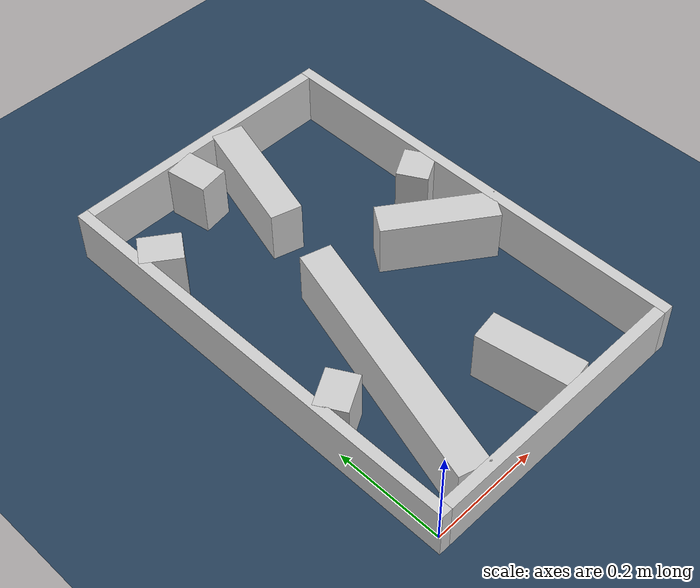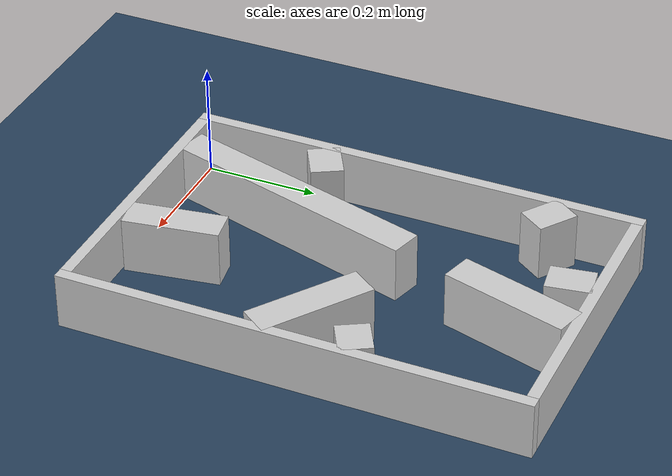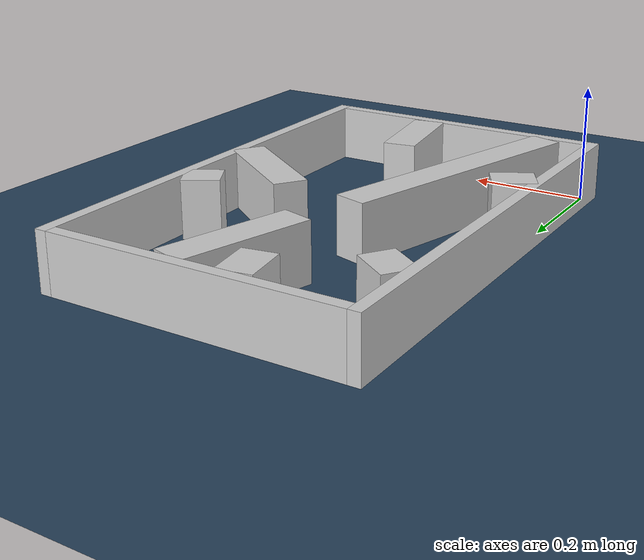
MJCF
<?xml version="1.0" ?>
<mujoco model="generated_real_template">
  <compiler angle="degree"/>
  <option timestep="0.002" integrator="implicitfast" iterations="100" cone="elliptic"/>
  <default>
    <geom density="1"/>
  </default>
  <asset>
    <texture builtin="gradient" height="3072" rgb1="0.3 0.5 0.7" rgb2="0 0 0" type="skybox" width="512"/>
    <texture builtin="checker" height="300" mark="edge" markrgb="0.8 0.8 0.8" name="groundplane" rgb1="0.2 0.3 0.4" rgb2="0.1 0.2 0.3" type="2d" width="300"/>
    <material name="groundplane" reflectance="0.2" texrepeat="5 5" texture="groundplane" texuniform="true"/>
  </asset>
  <worldbody>
    <light dir="0 0 -1" directional="true" pos="0 0 1.5"/>
    <geom name="floor" type="plane" condim="4" friction="0.5 0.005 0.001" material="groundplane" size="0 0 0.05"/>
    <body name="walls">
      <geom name="wall_boundary_left" type="box" condim="4" friction="1.0 0.005 0.0001" rgba="0.8 0.8 0.8 1" pos="-0.010000 0.387500 0.050000" euler="0 0 0.000000" size="0.010000 0.407500 0.050000"/>
      <geom name="wall_boundary_right" type="box" condim="4" friction="1.0 0.005 0.0001" rgba="0.8 0.8 0.8 1" pos="0.500000 0.387500 0.050000" euler="0 0 0.000000" size="0.010000 0.407500 0.050000"/>
      <geom name="wall_boundary_bottom" type="box" condim="4" friction="1.0 0.005 0.0001" rgba="0.8 0.8 0.8 1" pos="0.245000 -0.010000 0.050000" euler="0 0 0.000000" size="0.245000 0.010000 0.050000"/>
      <geom name="wall_boundary_top" type="box" condim="4" friction="1.0 0.005 0.0001" rgba="0.8 0.8 0.8 1" pos="0.245000 0.785000 0.050000" euler="0 0 0.000000" size="0.245000 0.010000 0.050000"/>
      <geom name="wall_inner_1_1" type="box" condim="4" friction="1.0 0.005 0.0001" rgba="0.8 0.8 0.8 1" pos="0.405821 0.379476 0.050000" euler="0 0 144.973160" size="0.102797 0.028500 0.050000"/>
      <geom name="wall_inner_1_2" type="box" condim="4" friction="1.0 0.005 0.0001" rgba="0.8 0.8 0.8 1" pos="0.030283 0.642693 0.050000" euler="0 0 144.973160" size="0.036980 0.028500 0.050000"/>
      <geom name="wall_inner_2_1" type="box" condim="4" friction="1.0 0.005 0.0001" rgba="0.8 0.8 0.8 1" pos="0.135989 0.229693 0.050000" euler="0 0 74.191081" size="0.238723 0.028500 0.050000"/>
      <geom name="wall_inner_2_2" type="box" condim="4" friction="1.0 0.005 0.0001" rgba="0.8 0.8 0.8 1" pos="0.259415 0.665611 0.050000" euler="0 0 74.191081" size="0.113689 0.028500 0.050000"/>
      <geom name="wall_inner_3_1" type="box" condim="4" friction="1.0 0.005 0.0001" rgba="0.8 0.8 0.8 1" pos="0.031378 0.237458 0.050000" euler="0 0 29.472602" size="0.036042 0.028500 0.050000"/>
      <geom name="wall_inner_3_2" type="box" condim="4" friction="1.0 0.005 0.0001" rgba="0.8 0.8 0.8 1" pos="0.462580 0.481148 0.050000" euler="0 0 29.472602" size="0.031496 0.028500 0.050000"/>
      <geom name="wall_inner_4_1" type="box" condim="4" friction="1.0 0.005 0.0001" rgba="0.8 0.8 0.8 1" pos="0.187171 0.736595 0.050000" euler="0 0 -80.970121" size="0.038887 0.028500 0.050000"/>
      <geom name="wall_inner_4_2" type="box" condim="4" friction="1.0 0.005 0.0001" rgba="0.8 0.8 0.8 1" pos="0.291074 0.082785 0.050000" euler="0 0 -80.970121" size="0.083823 0.028500 0.050000"/>
    </body>
  </worldbody>
</mujoco>
